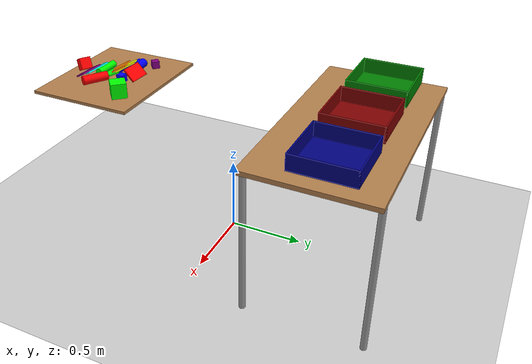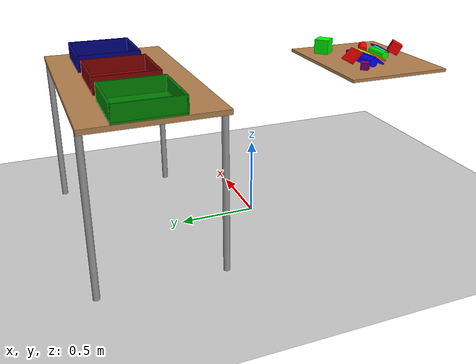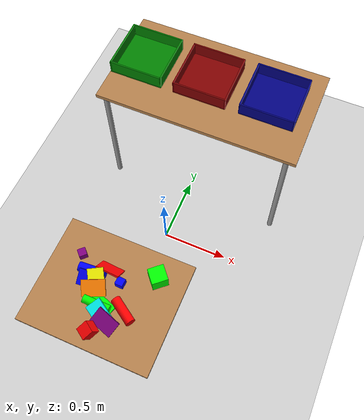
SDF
<sdf version="1.7">
 <world name="default">
  <light name="sun" type="directional">
   <pose>0 0 10 0 -0 0</pose>
   <diffuse>0.8 0.8 0.8 1</diffuse>
   <specular>0.2 0.2 0.2 1</specular>
   <attenuation>
    <range>1000</range>
    <constant>0.9</constant>
    <linear>0.01</linear>
    <quadratic>0.001</quadratic>
   </attenuation>
   <direction>-0.5 0.1 -0.9</direction>
   <spot><inner_angle>0</inner_angle><outer_angle>0</outer_angle><falloff>0</falloff></spot>
  </light>
  <model name="ground_plane">
   <static>1</static>
   <link name="link">
    <collision name="collision">
     <geometry><plane><normal>0 0 1</normal><size>100 100</size></plane></geometry>
     <surface><friction><ode><mu>100</mu><mu2>50</mu2></ode></friction></surface>
    </collision>
    <visual name="visual">
     <cast_shadows>0</cast_shadows>
     <geometry><plane><normal>0 0 1</normal><size>100 100</size></plane></geometry>
     <material>
      <script><uri>file://media/materials/scripts/gazebo.material</uri><name>Gazebo/Grey</name></script>
     </material>
    </visual>
   </link>
  </model>
  <gravity>0 0 -9.8</gravity>
  <magnetic_field>6e-06 2.3e-05 -4.2e-05</magnetic_field>
  <atmosphere type="adiabatic"/>
  <physics type="ode">
   <max_step_size>0.001</max_step_size>
   <real_time_factor>1</real_time_factor>
   <real_time_update_rate>1000</real_time_update_rate>
  </physics>
  <scene><ambient>0.4 0.4 0.4 1</ambient><background>0.7 0.7 0.7 1</background><shadows>1</shadows></scene>
  <audio><device>default</device></audio>
  <spherical_coordinates>
   <surface_model>EARTH_WGS84</surface_model>
   <latitude_deg>0</latitude_deg>
   <longitude_deg>0</longitude_deg>
   <elevation>0</elevation>
   <heading_deg>0</heading_deg>
  </spherical_coordinates>
  <model name="table">
   <static>1</static>
   <link name="link">
    <collision name="surface">
     <pose>0 0 1 0 -0 0</pose>
     <geometry><box><size>1.5 0.8 0.03</size></box></geometry>
     <surface>
      <friction><ode><mu>10</mu><mu2>5</mu2></ode></friction>
      <contact><ode><soft_cfm>0.0001</soft_cfm><soft_erp>0.4</soft_erp><kp>1e+06</kp><kd>10</kd></ode></contact>
     </surface>
    </collision>
    <visual name="visual1">
     <pose>0 0 1 0 -0 0</pose>
     <geometry><box><size>1.5 0.8 0.03</size></box></geometry>
     <material>
      <script><uri>file://media/materials/scripts/gazebo.material</uri><name>Gazebo/Wood</name></script>
     </material>
    </visual>
    <collision name="front_left_leg">
     <pose>0.68 0.38 0.5 0 -0 0</pose>
     <geometry><cylinder><radius>0.02</radius><length>1</length></cylinder></geometry>
    </collision>
    <visual name="front_left_leg">
     <pose>0.68 0.38 0.5 0 -0 0</pose>
     <geometry><cylinder><radius>0.02</radius><length>1</length></cylinder></geometry>
     <material>
      <script><uri>file://media/materials/scripts/gazebo.material</uri><name>Gazebo/Grey</name></script>
     </material>
    </visual>
    <collision name="front_right_leg">
     <pose>0.68 -0.38 0.5 0 -0 0</pose>
     <geometry><cylinder><radius>0.02</radius><length>1</length></cylinder></geometry>
    </collision>
    <visual name="front_right_leg">
     <pose>0.68 -0.38 0.5 0 -0 0</pose>
     <geometry><cylinder><radius>0.02</radius><length>1</length></cylinder></geometry>
     <material>
      <script><uri>file://media/materials/scripts/gazebo.material</uri><name>Gazebo/Grey</name></script>
     </material>
    </visual>
    <collision name="back_right_leg">
     <pose>-0.68 -0.38 0.5 0 -0 0</pose>
     <geometry><cylinder><radius>0.02</radius><length>1</length></cylinder></geometry>
    </collision>
    <visual name="back_right_leg">
     <pose>-0.68 -0.38 0.5 0 -0 0</pose>
     <geometry><cylinder><radius>0.02</radius><length>1</length></cylinder></geometry>
     <material>
      <script><uri>file://media/materials/scripts/gazebo.material</uri><name>Gazebo/Grey</name></script>
     </material>
    </visual>
    <collision name="back_left_leg">
     <pose>-0.68 0.38 0.5 0 -0 0</pose>
     <geometry><cylinder><radius>0.02</radius><length>1</length></cylinder></geometry>
    </collision>
    <visual name="back_left_leg">
     <pose>-0.68 0.38 0.5 0 -0 0</pose>
     <geometry><cylinder><radius>0.02</radius><length>1</length></cylinder></geometry>
     <material>
      <script><uri>file://media/materials/scripts/gazebo.material</uri><name>Gazebo/Grey</name></script>
     </material>
    </visual>
    <inertial>
     <inertia><ixx>1</ixx><ixy>0</ixy><ixz>0</ixz><iyy>1</iyy><iyz>0</iyz><izz>1</izz></inertia>
     <mass>50</mass>
    </inertial>
   </link>
   <pose>0.056083 0.801191 -1.2e-05 0 -0 2.5e-05</pose>
  </model>
  <plugin name="gazebo_link_attacher" filename="libgazebo_link_attacher.so"/>
  <plugin name="gazebo_ros_state" filename="libgazebo_ros_state.so">
   <namespace>/gazebo</namespace>
   <update_rate>100</update_rate>
  </plugin>
  <model name="cube_b">
   <link name="link_2">
    <inertial>
     <mass>2</mass>
     <inertia>
      <ixx>0.00083333</ixx>
      <ixy>0</ixy>
      <ixz>0</ixz>
      <iyy>0.00083333</iyy>
      <iyz>0</iyz>
      <izz>0.00083333</izz>
     </inertia>
    </inertial>
    <visual name="visual">
     <geometry><box><size>0.05 0.05 0.05</size></box></geometry>
     <material>
      <lighting>1</lighting>
      <script><uri>file://media/materials/scripts/gazebo.material</uri><name>Gazebo/Grey</name></script>
      <ambient>0 0 1 1</ambient>
      <diffuse>0 0 1 1</diffuse>
      <specular>0 0 0 1</specular>
      <emissive>0 0 0 1</emissive>
      <shader type="vertex"><normal_map>__default__</normal_map></shader>
     </material>
    </visual>
    <collision name="collision">
     <geometry><box><size>0.05 0.05 0.05</size></box></geometry>
     <surface>
      <friction>
       <ode><mu>0.8</mu><mu2>0.8</mu2><fdir1>0 0 0</fdir1><slip1>0</slip1><slip2>0</slip2></ode>
       <torsional>
        <coefficient>1</coefficient>
        <patch_radius>0</patch_radius>
        <surface_radius>0</surface_radius>
        <use_patch_radius>1</use_patch_radius>
        <ode><slip>0</slip></ode>
       </torsional>
      </friction>
      <bounce><restitution_coefficient>0</restitution_coefficient><threshold>1e+06</threshold></bounce>
      <contact>
       <collide_without_contact>0</collide_without_contact>
       <collide_without_contact_bitmask>1</collide_without_contact_bitmask>
       <collide_bitmask>1</collide_bitmask>
       <ode>
        <soft_cfm>0.0001</soft_cfm>
        <soft_erp>0.4</soft_erp>
        <kp>1e+06</kp>
        <kd>10</kd>
        <max_vel>0.01</max_vel>
        <min_depth>0</min_depth>
       </ode>
      </contact>
     </surface>
    </collision>
   </link>
   <static>0</static>
   <allow_auto_disable>0</allow_auto_disable>
   <pose>0.092519 -0.782031 1.01104 -1.27277 1.56647 0.262677</pose>
  </model>
  <model name="cube_g">
   <link name="link_2">
    <inertial>
     <mass>2</mass>
     <inertia>
      <ixx>0.00333333</ixx>
      <iyy>0.00333333</iyy>
      <izz>0.00333333</izz>
      <ixy>0</ixy>
      <ixz>0</ixz>
      <iyz>0</iyz>
     </inertia>
    </inertial>
    <visual name="visual">
     <geometry><box><size>0.1 0.1 0.1</size></box></geometry>
     <material>
      <lighting>1</lighting>
      <script><uri>file://media/materials/scripts/gazebo.material</uri><name>Gazebo/Grey</name></script>
      <ambient>0 1 0 1</ambient>
      <diffuse>0 1 0 1</diffuse>
      <specular>0 0 0 1</specular>
      <emissive>0 0 0 1</emissive>
      <shader type="vertex"><normal_map>__default__</normal_map></shader>
     </material>
    </visual>
    <collision name="collision">
     <geometry><box><size>0.1 0.1 0.1</size></box></geometry>
     <surface>
      <friction>
       <ode><mu>0.8</mu><mu2>0.8</mu2><fdir1>0 0 0</fdir1><slip1>0</slip1><slip2>0</slip2></ode>
       <torsional>
        <coefficient>1</coefficient>
        <patch_radius>0</patch_radius>
        <surface_radius>0</surface_radius>
        <use_patch_radius>1</use_patch_radius>
        <ode><slip>0</slip></ode>
       </torsional>
      </friction>
      <bounce><restitution_coefficient>0</restitution_coefficient><threshold>1e+06</threshold></bounce>
      <contact>
       <collide_without_contact>0</collide_without_contact>
       <collide_without_contact_bitmask>1</collide_without_contact_bitmask>
       <collide_bitmask>1</collide_bitmask>
       <ode>
        <soft_cfm>0.0001</soft_cfm>
        <soft_erp>0.4</soft_erp>
        <kp>1e+06</kp>
        <kd>10</kd>
        <max_vel>0.01</max_vel>
        <min_depth>0</min_depth>
       </ode>
      </contact>
     </surface>
    </collision>
   </link>
   <static>0</static>
   <allow_auto_disable>0</allow_auto_disable>
   <pose>0.289071 -0.671188 1.03698 -1.57465 0.00192 2.29768</pose>
  </model>
  <model name="cube_r">
   <link name="link_2">
    <inertial>
     <mass>2</mass>
     <inertia>
      <ixx>0.001875</ixx>
      <ixy>0</ixy>
      <ixz>0</ixz>
      <iyy>0.001875</iyy>
      <iyz>0</iyz>
      <izz>0.001875</izz>
     </inertia>
    </inertial>
    <visual name="visual">
     <geometry><box><size>0.075 0.075 0.075</size></box></geometry>
     <material>
      <lighting>1</lighting>
      <script><uri>file://media/materials/scripts/gazebo.material</uri><name>Gazebo/Grey</name></script>
      <ambient>1 0 0 1</ambient>
      <diffuse>1 0 0 1</diffuse>
      <specular>0 0 0 1</specular>
      <emissive>0 0 0 1</emissive>
      <shader type="vertex"><normal_map>__default__</normal_map></shader>
     </material>
    </visual>
    <collision name="collision">
     <geometry><box><size>0.075 0.075 0.075</size></box></geometry>
     <surface>
      <friction>
       <ode><mu>0.8</mu><mu2>0.8</mu2><fdir1>0 0 0</fdir1><slip1>0</slip1><slip2>0</slip2></ode>
       <torsional>
        <coefficient>1</coefficient>
        <patch_radius>0</patch_radius>
        <surface_radius>0</surface_radius>
        <use_patch_radius>1</use_patch_radius>
        <ode><slip>0</slip></ode>
       </torsional>
      </friction>
      <bounce><restitution_coefficient>0</restitution_coefficient><threshold>1e+06</threshold></bounce>
      <contact>
       <collide_without_contact>0</collide_without_contact>
       <collide_without_contact_bitmask>1</collide_without_contact_bitmask>
       <collide_bitmask>1</collide_bitmask>
       <ode>
        <soft_cfm>0.0001</soft_cfm>
        <soft_erp>0.4</soft_erp>
        <kp>1e+06</kp>
        <kd>10</kd>
        <max_vel>0.01</max_vel>
        <min_depth>0</min_depth>
       </ode>
      </contact>
     </surface>
    </collision>
   </link>
   <static>0</static>
   <allow_auto_disable>0</allow_auto_disable>
   <pose>0.053091 -1.11237 1.03608 2.0535 -0.002784 -0.574542</pose>
  </model>
  <model name="cylinder_r">
   <link name="link_0">
    <inertial>
     <mass>0.2</mass>
     <inertia>
      <ixx>0.0005267</ixx>
      <ixy>0</ixy>
      <ixz>0</ixz>
      <iyy>0.0005267</iyy>
      <iyz>0</iyz>
      <izz>9e-05</izz>
     </inertia>
    </inertial>
    <visual name="visual">
     <geometry><cylinder><radius>0.03</radius><length>0.17</length></cylinder></geometry>
     <material>
      <lighting>1</lighting>
      <script><uri>file://media/materials/scripts/gazebo.material</uri><name>Gazebo/Grey</name></script>
      <ambient>1 0 0 1</ambient>
      <diffuse>1 0 0 1</diffuse>
      <specular>0 0 0 1</specular>
      <emissive>0 0 0 1</emissive>
      <shader type="vertex"><normal_map>__default__</normal_map></shader>
     </material>
    </visual>
    <collision name="collision">
     <geometry><cylinder><radius>0.03</radius><length>0.17</length></cylinder></geometry>
     <surface>
      <friction>
       <ode><mu>0.5</mu><mu2>0.5</mu2><fdir1>0 0 0</fdir1><slip1>0</slip1><slip2>0</slip2></ode>
       <torsional>
        <coefficient>1</coefficient>
        <patch_radius>0</patch_radius>
        <surface_radius>0</surface_radius>
        <use_patch_radius>1</use_patch_radius>
        <ode><slip>0</slip></ode>
       </torsional>
      </friction>
      <bounce><restitution_coefficient>0</restitution_coefficient><threshold>1e+06</threshold></bounce>
      <contact>
       <collide_without_contact>0</collide_without_contact>
       <collide_without_contact_bitmask>1</collide_without_contact_bitmask>
       <collide_bitmask>1</collide_bitmask>
       <ode>
        <soft_cfm>0.0001</soft_cfm>
        <soft_erp>0.4</soft_erp>
        <kp>1e+06</kp>
        <kd>10</kd>
        <max_vel>0.01</max_vel>
        <min_depth>0</min_depth>
       </ode>
      </contact>
     </surface>
    </collision>
   </link>
   <static>0</static>
   <allow_auto_disable>0</allow_auto_disable>
   <pose>0.182893 -0.931071 1.01625 1.56748 -0.5053 1.0066</pose>
  </model>
  <model name="cylinder_b">
   <link name="link_0">
    <inertial>
     <mass>0.2</mass>
     <inertia>
      <ixx>0.0005267</ixx>
      <ixy>0</ixy>
      <ixz>0</ixz>
      <iyy>0.0005267</iyy>
      <iyz>0</iyz>
      <izz>9e-05</izz>
     </inertia>
    </inertial>
    <visual name="visual">
     <geometry><cylinder><radius>0.03</radius><length>0.17</length></cylinder></geometry>
     <material>
      <lighting>1</lighting>
      <ambient>0 0 1 1</ambient>
      <diffuse>0 0 1 1</diffuse>
      <specular>0.1 0.1 0.1 1</specular>
      <emissive>0 0 0 1</emissive>
      <shader type="vertex"><normal_map>__default__</normal_map></shader>
     </material>
    </visual>
    <collision name="collision">
     <geometry><cylinder><radius>0.03</radius><length>0.17</length></cylinder></geometry>
     <surface>
      <friction>
       <ode><mu>0.4</mu><mu2>0.4</mu2><fdir1>0 0 0</fdir1><slip1>0</slip1><slip2>0</slip2></ode>
       <torsional>
        <coefficient>1</coefficient>
        <patch_radius>0</patch_radius>
        <surface_radius>0</surface_radius>
        <use_patch_radius>1</use_patch_radius>
        <ode><slip>0</slip></ode>
       </torsional>
      </friction>
      <bounce><restitution_coefficient>0</restitution_coefficient><threshold>1e+06</threshold></bounce>
      <contact>
       <collide_without_contact>0</collide_without_contact>
       <collide_without_contact_bitmask>1</collide_without_contact_bitmask>
       <collide_bitmask>1</collide_bitmask>
       <ode>
        <soft_cfm>0.0001</soft_cfm>
        <soft_erp>0.4</soft_erp>
        <kp>1e+06</kp>
        <kd>10</kd>
        <max_vel>0.01</max_vel>
        <min_depth>0</min_depth>
       </ode>
      </contact>
     </surface>
    </collision>
   </link>
   <static>0</static>
   <allow_auto_disable>0</allow_auto_disable>
   <pose>-0.095635 -0.780497 1.01523 -1.59878 1.42054 1.62474</pose>
  </model>
  <model name="cylinder_g">
   <link name="link_0">
    <inertial>
     <mass>0.2</mass>
     <inertia>
      <ixx>0.0005129</ixx>
      <ixy>0</ixy>
      <ixz>0</ixz>
      <iyy>0.0005129</iyy>
      <iyz>0</iyz>
      <izz>6.25e-05</izz>
     </inertia>
    </inertial>
    <visual name="visual">
     <geometry><cylinder><radius>0.025</radius><length>0.17</length></cylinder></geometry>
     <material>
      <lighting>1</lighting>
      <ambient>0 1 0 1</ambient>
      <diffuse>0 1 0 1</diffuse>
      <specular>0.1 0.1 0.1 1</specular>
      <emissive>0 0 0 1</emissive>
      <shader type="vertex"><normal_map>__default__</normal_map></shader>
     </material>
    </visual>
    <collision name="collision">
     <geometry><cylinder><radius>0.025</radius><length>0.17</length></cylinder></geometry>
     <surface>
      <friction>
       <ode><mu>0.5</mu><mu2>0.5</mu2><fdir1>0 0 0</fdir1><slip1>0</slip1><slip2>0</slip2></ode>
       <torsional>
        <coefficient>1</coefficient>
        <patch_radius>0</patch_radius>
        <surface_radius>0</surface_radius>
        <use_patch_radius>1</use_patch_radius>
        <ode><slip>0</slip></ode>
       </torsional>
      </friction>
      <bounce><restitution_coefficient>0</restitution_coefficient><threshold>1e+06</threshold></bounce>
      <contact>
       <collide_without_contact>0</collide_without_contact>
       <collide_without_contact_bitmask>1</collide_without_contact_bitmask>
       <collide_bitmask>1</collide_bitmask>
       <ode>
        <soft_cfm>0.0001</soft_cfm>
        <soft_erp>0.4</soft_erp>
        <kp>1e+06</kp>
        <kd>10</kd>
        <max_vel>0.01</max_vel>
        <min_depth>0</min_depth>
       </ode>
      </contact>
     </surface>
    </collision>
   </link>
   <static>0</static>
   <allow_auto_disable>0</allow_auto_disable>
   <pose>0.022454 -0.955214 1.02045 -1.56293 1.00739 -1.5711</pose>
  </model>
  <model name="cuboid_r">
   <link name="link">
    <inertial>
     <mass>2</mass>
     <inertia>
      <ixx>0.001683</ixx>
      <iyy>0.003767</iyy>
      <izz>0.005417</izz>
      <ixy>0</ixy>
      <ixz>0</ixz>
      <iyz>0</iyz>
     </inertia>
    </inertial>
    <visual name="visual">
     <geometry><box><size>0.15 0.1 0.01</size></box></geometry>
     <material><ambient>1 0 0 1</ambient><diffuse>1 0 0 1</diffuse><specular>0.1 0.1 0.1 1</specular></material>
    </visual>
    <collision name="collision">
     <geometry><box><size>0.15 0.1 0.01</size></box></geometry>
     <surface>
      <friction>
       <ode><mu>0.6</mu><mu2>0.6</mu2><fdir1>0 0 0</fdir1><slip1>0</slip1><slip2>0</slip2></ode>
       <torsional>
        <coefficient>1</coefficient>
        <patch_radius>0</patch_radius>
        <surface_radius>0</surface_radius>
        <use_patch_radius>1</use_patch_radius>
        <ode><slip>0</slip></ode>
       </torsional>
      </friction>
      <bounce><restitution_coefficient>0</restitution_coefficient><threshold>1e+06</threshold></bounce>
      <contact>
       <collide_without_contact>0</collide_without_contact>
       <collide_without_contact_bitmask>1</collide_without_contact_bitmask>
       <collide_bitmask>1</collide_bitmask>
       <ode>
        <soft_cfm>0.0001</soft_cfm>
        <soft_erp>0.4</soft_erp>
        <kp>1e+06</kp>
        <kd>10</kd>
        <max_vel>0.01</max_vel>
        <min_depth>0</min_depth>
       </ode>
      </contact>
     </surface>
    </collision>
   </link>
   <static>0</static>
   <allow_auto_disable>0</allow_auto_disable>
   <pose>0.002065 -0.734144 1.02471 -0.787329 -0.004084 -0.058077</pose>
  </model>
  <model name="cuboid_g">
   <link name="link">
    <inertial>
     <mass>2</mass>
     <inertia>
      <ixx>0.001683</ixx>
      <iyy>0.003767</iyy>
      <izz>0.005417</izz>
      <ixy>0</ixy>
      <ixz>0</ixz>
      <iyz>0</iyz>
     </inertia>
    </inertial>
    <visual name="visual">
     <geometry><box><size>0.15 0.1 0.01</size></box></geometry>
     <material><ambient>0 1 0 1</ambient><diffuse>0 1 0 1</diffuse><specular>0.1 0.1 0.1 1</specular></material>
    </visual>
    <collision name="collision">
     <geometry><box><size>0.15 0.1 0.01</size></box></geometry>
     <surface>
      <friction>
       <ode><mu>0.6</mu><mu2>0.6</mu2><fdir1>0 0 0</fdir1><slip1>0</slip1><slip2>0</slip2></ode>
       <torsional>
        <coefficient>1</coefficient>
        <patch_radius>0</patch_radius>
        <surface_radius>0</surface_radius>
        <use_patch_radius>1</use_patch_radius>
        <ode><slip>0</slip></ode>
       </torsional>
      </friction>
      <bounce><restitution_coefficient>0</restitution_coefficient><threshold>1e+06</threshold></bounce>
      <contact>
       <collide_without_contact>0</collide_without_contact>
       <collide_without_contact_bitmask>1</collide_without_contact_bitmask>
       <collide_bitmask>1</collide_bitmask>
       <ode>
        <soft_cfm>0.0001</soft_cfm>
        <soft_erp>0.4</soft_erp>
        <kp>1e+06</kp>
        <kd>10</kd>
        <max_vel>0.01</max_vel>
        <min_depth>0</min_depth>
       </ode>
      </contact>
     </surface>
    </collision>
   </link>
   <static>0</static>
   <allow_auto_disable>0</allow_auto_disable>
   <pose>0.042904 -0.947672 0.990614 -0.002246 0.003787 2.82257</pose>
  </model>
  <model name="cuboid_b">
   <link name="link">
    <inertial>
     <mass>2</mass>
     <inertia>
      <ixx>0.001683</ixx>
      <iyy>0.003767</iyy>
      <izz>0.005417</izz>
      <ixy>0</ixy>
      <ixz>0</ixz>
      <iyz>0</iyz>
     </inertia>
    </inertial>
    <visual name="visual">
     <geometry><box><size>0.15 0.1 0.01</size></box></geometry>
     <material><ambient>0 0 1 1</ambient><diffuse>0 0 1 1</diffuse><specular>0.1 0.1 0.1 1</specular></material>
    </visual>
    <collision name="collision">
     <geometry><box><size>0.15 0.1 0.01</size></box></geometry>
     <surface>
      <friction>
       <ode><mu>0.6</mu><mu2>0.6</mu2><fdir1>0 0 0</fdir1><slip1>0</slip1><slip2>0</slip2></ode>
       <torsional>
        <coefficient>1</coefficient>
        <patch_radius>0</patch_radius>
        <surface_radius>0</surface_radius>
        <use_patch_radius>1</use_patch_radius>
        <ode><slip>0</slip></ode>
       </torsional>
      </friction>
      <bounce><restitution_coefficient>0</restitution_coefficient><threshold>1e+06</threshold></bounce>
      <contact>
       <collide_without_contact>0</collide_without_contact>
       <collide_without_contact_bitmask>1</collide_without_contact_bitmask>
       <collide_bitmask>1</collide_bitmask>
       <ode>
        <soft_cfm>0.0001</soft_cfm>
        <soft_erp>0.4</soft_erp>
        <kp>1e+06</kp>
        <kd>10</kd>
        <max_vel>0.01</max_vel>
        <min_depth>0</min_depth>
       </ode>
      </contact>
     </surface>
    </collision>
   </link>
   <static>0</static>
   <allow_auto_disable>0</allow_auto_disable>
   <pose>-0.084154 -0.83791 1.01781 -0.600645 0.001219 -3.0633</pose>
  </model>
  <model name="cuboid_purple">
   <link name="link">
    <inertial>
     <mass>2</mass>
     <inertia>
      <ixx>0.001683</ixx>
      <iyy>0.003767</iyy>
      <izz>0.005417</izz>
      <ixy>0</ixy>
      <ixz>0</ixz>
      <iyz>0</iyz>
     </inertia>
    </inertial>
    <visual name="visual">
     <geometry><box><size>0.15 0.1 0.01</size></box></geometry>
     <material>
      <ambient>0.5 0 0.5 1</ambient>
      <diffuse>0.5 0 0.5 1</diffuse>
      <specular>0.1 0.1 0.1 1</specular>
     </material>
    </visual>
    <collision name="collision">
     <geometry><box><size>0.15 0.1 0.01</size></box></geometry>
     <surface>
      <friction>
       <ode><mu>0.6</mu><mu2>0.6</mu2><fdir1>0 0 0</fdir1><slip1>0</slip1><slip2>0</slip2></ode>
       <torsional>
        <coefficient>1</coefficient>
        <patch_radius>0</patch_radius>
        <surface_radius>0</surface_radius>
        <use_patch_radius>1</use_patch_radius>
        <ode><slip>0</slip></ode>
       </torsional>
      </friction>
      <bounce><restitution_coefficient>0</restitution_coefficient><threshold>1e+06</threshold></bounce>
      <contact>
       <collide_without_contact>0</collide_without_contact>
       <collide_without_contact_bitmask>1</collide_without_contact_bitmask>
       <collide_bitmask>1</collide_bitmask>
       <ode>
        <soft_cfm>0.0001</soft_cfm>
        <soft_erp>0.4</soft_erp>
        <kp>1e+06</kp>
        <kd>10</kd>
        <max_vel>0.01</max_vel>
        <min_depth>0</min_depth>
       </ode>
      </contact>
     </surface>
    </collision>
   </link>
   <static>0</static>
   <allow_auto_disable>0</allow_auto_disable>
   <pose>0.116399 -1.03202 1.02447 0.48736 0.146342 -0.290738</pose>
  </model>
  <model name="cuboid_orange">
   <link name="link">
    <inertial>
     <mass>2</mass>
     <inertia>
      <ixx>0.001683</ixx>
      <iyy>0.003767</iyy>
      <izz>0.005417</izz>
      <ixy>0</ixy>
      <ixz>0</ixz>
      <iyz>0</iyz>
     </inertia>
    </inertial>
    <visual name="visual">
     <geometry><box><size>0.15 0.1 0.01</size></box></geometry>
     <material>
      <ambient>1 0.5 0 1</ambient>
      <diffuse>1 0.5 0 1</diffuse>
      <specular>0.1 0.1 0.1 1</specular>
     </material>
    </visual>
    <collision name="collision">
     <geometry><box><size>0.15 0.1 0.01</size></box></geometry>
     <surface>
      <friction>
       <ode><mu>0.6</mu><mu2>0.6</mu2><fdir1>0 0 0</fdir1><slip1>0</slip1><slip2>0</slip2></ode>
       <torsional>
        <coefficient>1</coefficient>
        <patch_radius>0</patch_radius>
        <surface_radius>0</surface_radius>
        <use_patch_radius>1</use_patch_radius>
        <ode><slip>0</slip></ode>
       </torsional>
      </friction>
      <bounce><restitution_coefficient>0</restitution_coefficient><threshold>1e+06</threshold></bounce>
      <contact>
       <collide_without_contact>0</collide_without_contact>
       <collide_without_contact_bitmask>1</collide_without_contact_bitmask>
       <collide_bitmask>1</collide_bitmask>
       <ode>
        <soft_cfm>0.0001</soft_cfm>
        <soft_erp>0.4</soft_erp>
        <kp>1e+06</kp>
        <kd>10</kd>
        <max_vel>0.01</max_vel>
        <min_depth>0</min_depth>
       </ode>
      </contact>
     </surface>
    </collision>
   </link>
   <static>0</static>
   <allow_auto_disable>0</allow_auto_disable>
   <pose>-0.037905 -0.877197 1.02346 -0.471307 0.154076 -2.77218</pose>
  </model>
  <model name="cuboid_yellow">
   <link name="link">
    <inertial>
     <mass>2</mass>
     <inertia>
      <ixx>0.001683</ixx>
      <iyy>0.003767</iyy>
      <izz>0.005417</izz>
      <ixy>0</ixy>
      <ixz>0</ixz>
      <iyz>0</iyz>
     </inertia>
    </inertial>
    <visual name="visual">
     <geometry><box><size>0.15 0.1 0.01</size></box></geometry>
     <material><ambient>1 1 0 1</ambient><diffuse>1 1 0 1</diffuse><specular>0.1 0.1 0.1 1</specular></material>
    </visual>
    <collision name="collision">
     <geometry><box><size>0.15 0.1 0.01</size></box></geometry>
     <surface>
      <friction>
       <ode><mu>0.6</mu><mu2>0.6</mu2><fdir1>0 0 0</fdir1><slip1>0</slip1><slip2>0</slip2></ode>
       <torsional>
        <coefficient>1</coefficient>
        <patch_radius>0</patch_radius>
        <surface_radius>0</surface_radius>
        <use_patch_radius>1</use_patch_radius>
        <ode><slip>0</slip></ode>
       </torsional>
      </friction>
      <bounce><restitution_coefficient>0</restitution_coefficient><threshold>1e+06</threshold></bounce>
      <contact>
       <collide_without_contact>0</collide_without_contact>
       <collide_without_contact_bitmask>1</collide_without_contact_bitmask>
       <collide_bitmask>1</collide_bitmask>
       <ode>
        <soft_cfm>0.0001</soft_cfm>
        <soft_erp>0.4</soft_erp>
        <kp>1e+06</kp>
        <kd>10</kd>
        <max_vel>0.01</max_vel>
        <min_depth>0</min_depth>
       </ode>
      </contact>
     </surface>
    </collision>
   </link>
   <static>0</static>
   <allow_auto_disable>0</allow_auto_disable>
   <pose>-0.038328 -0.833695 1.0355 0.210023 0.450479 -1.03859</pose>
  </model>
  <model name="cuboid_cyan">
   <link name="link">
    <inertial>
     <mass>2</mass>
     <inertia>
      <ixx>0.001683</ixx>
      <iyy>0.003767</iyy>
      <izz>0.005417</izz>
      <ixy>0</ixy>
      <ixz>0</ixz>
      <iyz>0</iyz>
     </inertia>
    </inertial>
    <visual name="visual">
     <geometry><box><size>0.15 0.1 0.01</size></box></geometry>
     <material><ambient>0 1 1 1</ambient><diffuse>0 1 1 1</diffuse><specular>0.1 0.1 0.1 1</specular></material>
    </visual>
    <collision name="collision">
     <geometry><box><size>0.15 0.1 0.01</size></box></geometry>
     <surface>
      <friction>
       <ode><mu>0.6</mu><mu2>0.6</mu2><fdir1>0 0 0</fdir1><slip1>0</slip1><slip2>0</slip2></ode>
       <torsional>
        <coefficient>1</coefficient>
        <patch_radius>0</patch_radius>
        <surface_radius>0</surface_radius>
        <use_patch_radius>1</use_patch_radius>
        <ode><slip>0</slip></ode>
       </torsional>
      </friction>
      <bounce><restitution_coefficient>0</restitution_coefficient><threshold>1e+06</threshold></bounce>
      <contact>
       <collide_without_contact>0</collide_without_contact>
       <collide_without_contact_bitmask>1</collide_without_contact_bitmask>
       <collide_bitmask>1</collide_bitmask>
       <ode>
        <soft_cfm>0.0001</soft_cfm>
        <soft_erp>0.4</soft_erp>
        <kp>1e+06</kp>
        <kd>10</kd>
        <max_vel>0.01</max_vel>
        <min_depth>0</min_depth>
       </ode>
      </contact>
     </surface>
    </collision>
   </link>
   <static>0</static>
   <allow_auto_disable>0</allow_auto_disable>
   <pose>0.068119 -0.999609 1.03041 0.437036 0.268428 -0.53243</pose>
  </model>
  <model name="workspace">
   <link name="link">
    <inertial>
     <mass>100</mass>
     <inertia><ixx>6.02417</ixx><ixy>0</ixy><ixz>0</ixz><iyy>4.08667</iyy><iyz>0</iyz><izz>10.1042</izz></inertia>
    </inertial>
    <visual name="visual">
     <geometry><box><size>0.7 0.85 0.02</size></box></geometry>
     <material>
      <script><name>Gazebo/Wood</name><uri>file://media/materials/scripts/gazebo.material</uri></script>
      <shader type="pixel"/>
     </material>
    </visual>
    <collision name="collision">
     <geometry><box><size>0.7 0.85 0.02</size></box></geometry>
     <surface>
      <friction>
       <ode><mu>100</mu><mu2>50</mu2><fdir1>0 0 0</fdir1><slip1>0</slip1><slip2>0</slip2></ode>
       <torsional>
        <coefficient>1</coefficient>
        <patch_radius>0</patch_radius>
        <surface_radius>0</surface_radius>
        <use_patch_radius>1</use_patch_radius>
        <ode><slip>0</slip></ode>
       </torsional>
      </friction>
      <bounce><restitution_coefficient>0</restitution_coefficient><threshold>1e+06</threshold></bounce>
      <contact>
       <collide_without_contact>0</collide_without_contact>
       <collide_without_contact_bitmask>1</collide_without_contact_bitmask>
       <collide_bitmask>1</collide_bitmask>
       <ode>
        <soft_cfm>0.0001</soft_cfm>
        <soft_erp>0.2</soft_erp>
        <kp>1e+13</kp>
        <kd>10</kd>
        <max_vel>0.01</max_vel>
        <min_depth>0</min_depth>
       </ode>
       <bullet>
        <split_impulse>1</split_impulse>
        <split_impulse_penetration_threshold>-0.01</split_impulse_penetration_threshold>
        <soft_cfm>0</soft_cfm>
        <soft_erp>0.2</soft_erp>
        <kp>1e+13</kp>
        <kd>1</kd>
       </bullet>
      </contact>
     </surface>
    </collision>
   </link>
   <static>1</static>
   <pose>0.0416 -0.859914 0.975746 -0.004154 -0.001127 1.57039</pose>
  </model>
  <model name="tray_red">
   <static>1</static>
   <link name="link">
    <collision name="base_collision">
     <pose>0 0 0.01 0 -0 0</pose>
     <geometry><box><size>0.4 0.4 0.01</size></box></geometry>
     <surface><contact><ode><mu>50</mu><mu2>50</mu2></ode></contact></surface>
    </collision>
    <visual name="base_visual">
     <pose>0 0 0.01 0 -0 0</pose>
     <geometry><box><size>0.4 0.4 0.01</size></box></geometry>
     <material>
      <ambient>1 0 0 1</ambient>
      <diffuse>0.5 0 0 1</diffuse>
      <specular>0 0 0 1</specular>
      <emissive>0 0 0 1</emissive>
      <shininess>100</shininess>
     </material>
    </visual>
    <collision name="front_collision">
     <pose>0 0.195 0.06 0 -0 0</pose>
     <geometry><box><size>0.4 0.01 0.1</size></box></geometry>
    </collision>
    <visual name="front_visual">
     <pose>0 0.195 0.06 0 -0 0</pose>
     <geometry><box><size>0.4 0.01 0.1</size></box></geometry>
     <material>
      <ambient>1 0 0 1</ambient>
      <diffuse>0.5 0 0 1</diffuse>
      <specular>0 0 0 1</specular>
      <emissive>0 0 0 1</emissive>
     </material>
    </visual>
    <collision name="back_collision">
     <pose>0 -0.195 0.06 0 -0 0</pose>
     <geometry><box><size>0.4 0.01 0.1</size></box></geometry>
    </collision>
    <visual name="back_visual">
     <pose>0 -0.195 0.06 0 -0 0</pose>
     <geometry><box><size>0.4 0.01 0.1</size></box></geometry>
     <material>
      <ambient>1 0 0 1</ambient>
      <diffuse>0.5 0 0 1</diffuse>
      <specular>0 0 0 1</specular>
      <emissive>0 0 0 1</emissive>
     </material>
    </visual>
    <collision name="left_collision">
     <pose>0.195 0 0.06 0 -0 0</pose>
     <geometry><box><size>0.01 0.4 0.1</size></box></geometry>
    </collision>
    <visual name="left_visual">
     <pose>0.195 0 0.06 0 -0 0</pose>
     <geometry><box><size>0.01 0.4 0.1</size></box></geometry>
     <material>
      <ambient>1 0 0 1</ambient>
      <diffuse>0.5 0 0 1</diffuse>
      <specular>0 0 0 1</specular>
      <emissive>0 0 0 1</emissive>
     </material>
    </visual>
    <collision name="right_collision">
     <pose>-0.195 0 0.06 0 -0 0</pose>
     <geometry><box><size>0.01 0.4 0.1</size></box></geometry>
    </collision>
    <visual name="right_visual">
     <pose>-0.195 0 0.06 0 -0 0</pose>
     <geometry><box><size>0.01 0.4 0.1</size></box></geometry>
     <material>
      <ambient>1 0 0 1</ambient>
      <diffuse>0.5 0 0 1</diffuse>
      <specular>0 0 0 1</specular>
      <emissive>0 0 0 1</emissive>
     </material>
    </visual>
    <inertial>
     <inertia><ixx>1</ixx><ixy>0</ixy><ixz>0</ixz><iyy>1</iyy><iyz>0</iyz><izz>1</izz></inertia>
     <mass>1</mass>
    </inertial>
   </link>
   <pose>0.003367 0.836815 1.00999 0 -0 0</pose>
  </model>
  <model name="tray_green">
   <static>1</static>
   <link name="link">
    <collision name="base_collision">
     <pose>0 0 0.01 0 -0 0</pose>
     <geometry><box><size>0.4 0.4 0.01</size></box></geometry>
     <surface><contact><ode><mu>50</mu><mu2>50</mu2></ode></contact></surface>
    </collision>
    <visual name="base_visual">
     <pose>0 0 0.01 0 -0 0</pose>
     <geometry><box><size>0.4 0.4 0.01</size></box></geometry>
     <material><ambient>0 1 0 1</ambient><diffuse>0 0.5 0 1</diffuse></material>
    </visual>
    <collision name="front_collision">
     <pose>0 0.195 0.06 0 -0 0</pose>
     <geometry><box><size>0.4 0.01 0.1</size></box></geometry>
    </collision>
    <visual name="front_visual">
     <pose>0 0.195 0.06 0 -0 0</pose>
     <geometry><box><size>0.4 0.01 0.1</size></box></geometry>
     <material><ambient>0 1 0 1</ambient><diffuse>0 0.5 0 1</diffuse></material>
    </visual>
    <collision name="back_collision">
     <pose>0 -0.195 0.06 0 -0 0</pose>
     <geometry><box><size>0.4 0.01 0.1</size></box></geometry>
    </collision>
    <visual name="back_visual">
     <pose>0 -0.195 0.06 0 -0 0</pose>
     <geometry><box><size>0.4 0.01 0.1</size></box></geometry>
     <material><ambient>0 1 0 1</ambient><diffuse>0 0.5 0 1</diffuse></material>
    </visual>
    <collision name="left_collision">
     <pose>0.195 0 0.06 0 -0 0</pose>
     <geometry><box><size>0.01 0.4 0.1</size></box></geometry>
    </collision>
    <visual name="left_visual">
     <pose>0.195 0 0.06 0 -0 0</pose>
     <geometry><box><size>0.01 0.4 0.1</size></box></geometry>
     <material><ambient>0 1 0 1</ambient><diffuse>0 0.5 0 1</diffuse></material>
    </visual>
    <collision name="right_collision">
     <pose>-0.195 0 0.06 0 -0 0</pose>
     <geometry><box><size>0.01 0.4 0.1</size></box></geometry>
    </collision>
    <visual name="right_visual">
     <pose>-0.195 0 0.06 0 -0 0</pose>
     <geometry><box><size>0.01 0.4 0.1</size></box></geometry>
     <material><ambient>0 1 0 1</ambient><diffuse>0 0.5 0 1</diffuse></material>
    </visual>
    <inertial>
     <inertia><ixx>1</ixx><ixy>0</ixy><ixz>0</ixz><iyy>1</iyy><iyz>0</iyz><izz>1</izz></inertia>
     <mass>1</mass>
    </inertial>
   </link>
   <pose>-0.487214 0.834657 1.00999 0 -0 0</pose>
  </model>
  <model name="tray_blue">
   <static>1</static>
   <link name="link">
    <collision name="base_collision">
     <pose>0 0 0.01 0 -0 0</pose>
     <geometry><box><size>0.4 0.4 0.01</size></box></geometry>
     <surface><contact><ode><mu>50</mu><mu2>50</mu2></ode></contact></surface>
    </collision>
    <visual name="base_visual">
     <pose>0 0 0.01 0 -0 0</pose>
     <geometry><box><size>0.4 0.4 0.01</size></box></geometry>
     <material><ambient>0 0 1 1</ambient><diffuse>0 0 0.5 1</diffuse></material>
    </visual>
    <collision name="front_collision">
     <pose>0 0.195 0.06 0 -0 0</pose>
     <geometry><box><size>0.4 0.01 0.1</size></box></geometry>
    </collision>
    <visual name="front_visual">
     <pose>0 0.195 0.06 0 -0 0</pose>
     <geometry><box><size>0.4 0.01 0.1</size></box></geometry>
     <material><ambient>0 0 1 1</ambient><diffuse>0 0 0.5 1</diffuse></material>
    </visual>
    <collision name="back_collision">
     <pose>0 -0.195 0.06 0 -0 0</pose>
     <geometry><box><size>0.4 0.01 0.1</size></box></geometry>
    </collision>
    <visual name="back_visual">
     <pose>0 -0.195 0.06 0 -0 0</pose>
     <geometry><box><size>0.4 0.01 0.1</size></box></geometry>
     <material><ambient>0 0 1 1</ambient><diffuse>0 0 0.5 1</diffuse></material>
    </visual>
    <collision name="left_collision">
     <pose>0.195 0 0.06 0 -0 0</pose>
     <geometry><box><size>0.01 0.4 0.1</size></box></geometry>
    </collision>
    <visual name="left_visual">
     <pose>0.195 0 0.06 0 -0 0</pose>
     <geometry><box><size>0.01 0.4 0.1</size></box></geometry>
     <material><ambient>0 0 1 1</ambient><diffuse>0 0 0.5 1</diffuse></material>
    </visual>
    <collision name="right_collision">
     <pose>-0.195 0 0.06 0 -0 0</pose>
     <geometry><box><size>0.01 0.4 0.1</size></box></geometry>
    </collision>
    <visual name="right_visual">
     <pose>-0.195 0 0.06 0 -0 0</pose>
     <geometry><box><size>0.01 0.4 0.1</size></box></geometry>
     <material><ambient>0 0 1 1</ambient><diffuse>0 0 0.5 1</diffuse></material>
    </visual>
    <inertial>
     <inertia><ixx>1</ixx><ixy>0</ixy><ixz>0</ixz><iyy>1</iyy><iyz>0</iyz><izz>1</izz></inertia>
     <mass>1</mass>
    </inertial>
   </link>
   <pose>0.500589 0.844197 1.00999 0 -0 0</pose>
  </model>
  <model name="cube_purple">
   <link name="link_2">
    <inertial>
     <mass>2</mass>
     <inertia>
      <ixx>0.00083333</ixx>
      <ixy>0</ixy>
      <ixz>0</ixz>
      <iyy>0.00083333</iyy>
      <iyz>0</iyz>
      <izz>0.00083333</izz>
     </inertia>
    </inertial>
    <visual name="visual">
     <geometry><box><size>0.05 0.05 0.05</size></box></geometry>
     <material>
      <lighting>1</lighting>
      <script><uri>file://media/materials/scripts/gazebo.material</uri><name>Gazebo/Grey</name></script>
      <ambient>0.5 0 0.5 1</ambient>
      <diffuse>0.5 0 0.5 1</diffuse>
      <specular>0.1 0.1 0.1 1</specular>
      <emissive>0 0 0 1</emissive>
      <shader type="vertex"><normal_map>__default__</normal_map></shader>
     </material>
    </visual>
    <collision name="collision">
     <geometry><box><size>0.05 0.05 0.05</size></box></geometry>
     <surface>
      <friction>
       <ode><mu>0.8</mu><mu2>0.8</mu2><fdir1>0 0 0</fdir1><slip1>0</slip1><slip2>0</slip2></ode>
       <torsional>
        <coefficient>1</coefficient>
        <patch_radius>0</patch_radius>
        <surface_radius>0</surface_radius>
        <use_patch_radius>1</use_patch_radius>
        <ode><slip>0</slip></ode>
       </torsional>
      </friction>
      <bounce><restitution_coefficient>0</restitution_coefficient><threshold>1e+06</threshold></bounce>
      <contact>
       <collide_without_contact>0</collide_without_contact>
       <collide_without_contact_bitmask>1</collide_without_contact_bitmask>
       <collide_bitmask>1</collide_bitmask>
       <ode>
        <soft_cfm>0.0001</soft_cfm>
        <soft_erp>0.4</soft_erp>
        <kp>1e+06</kp>
        <kd>10</kd>
        <max_vel>0.01</max_vel>
        <min_depth>0</min_depth>
       </ode>
      </contact>
     </surface>
    </collision>
   </link>
   <static>0</static>
   <allow_auto_disable>0</allow_auto_disable>
   <pose>-0.20345 -0.705276 1.0099 3.13945 -0.003737 0.784201</pose>
  </model>
 </world>
</sdf>
